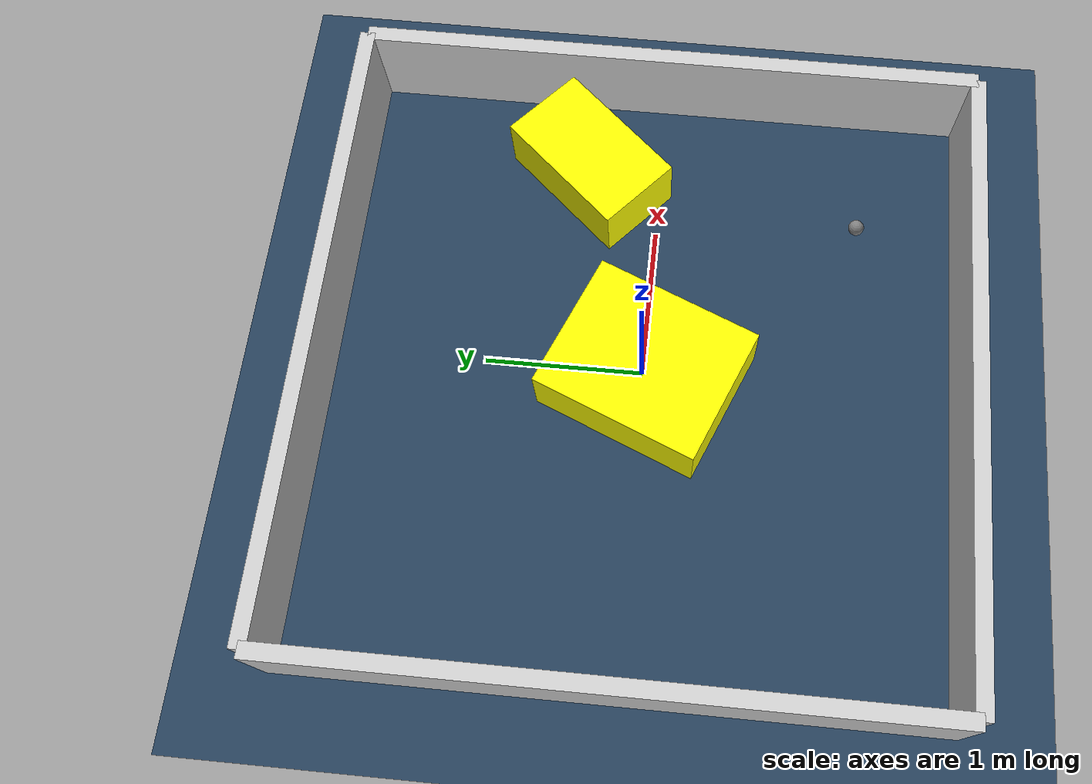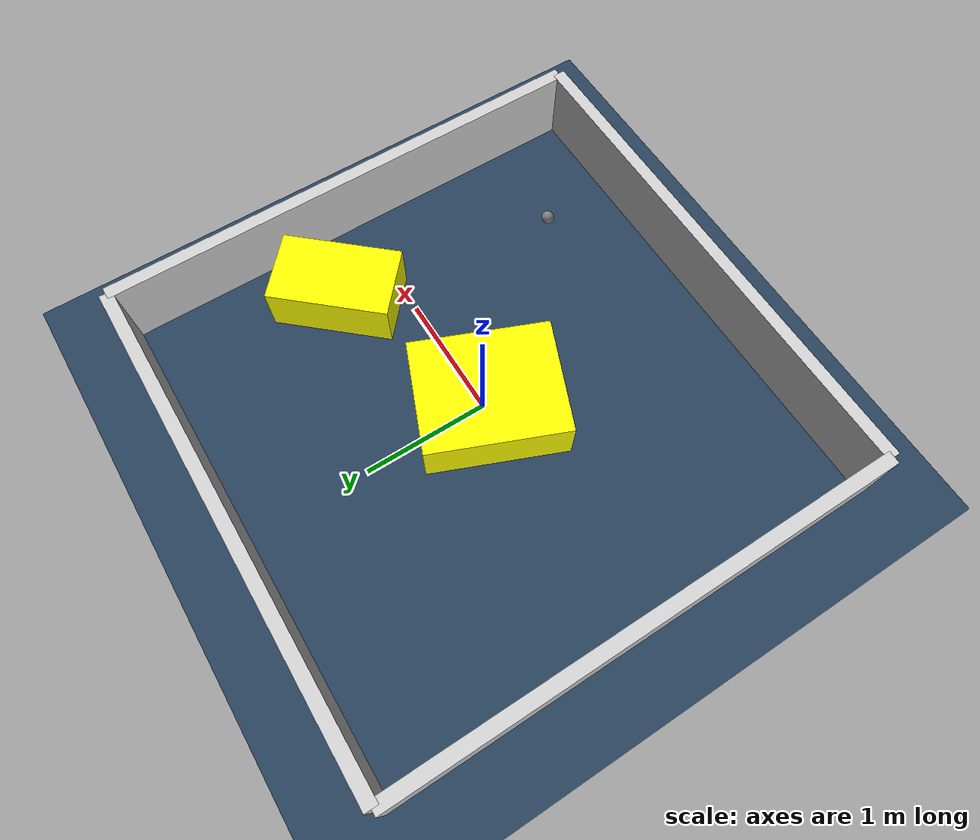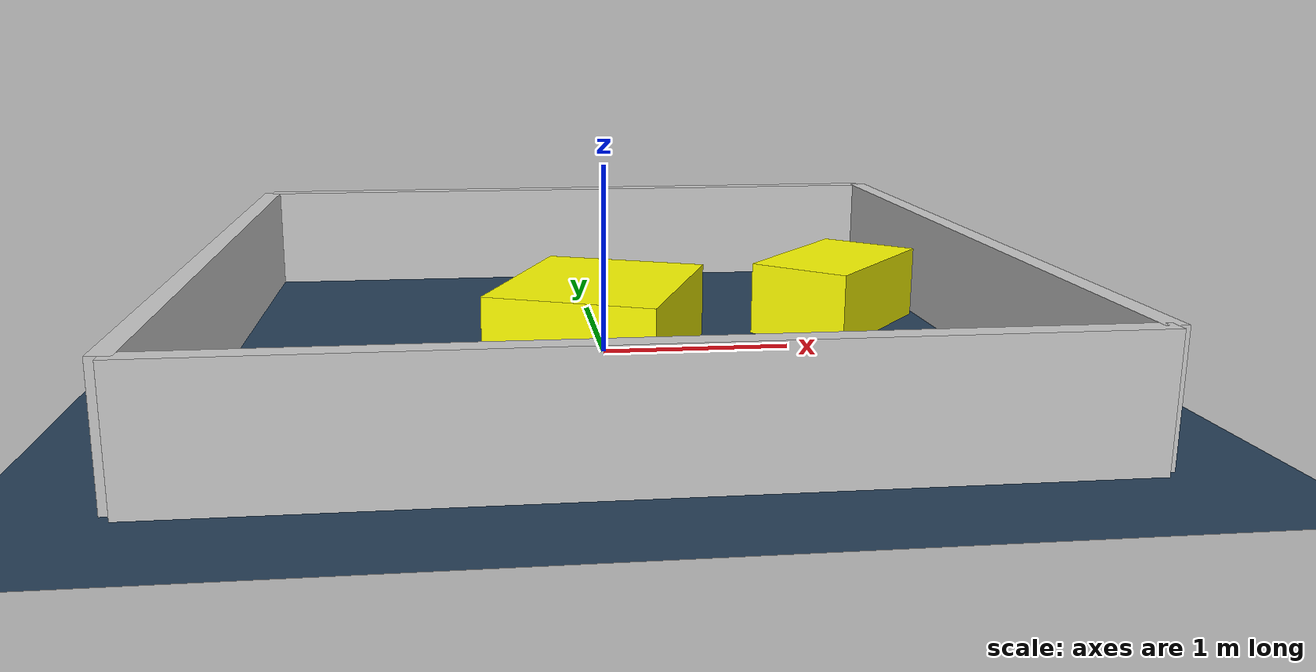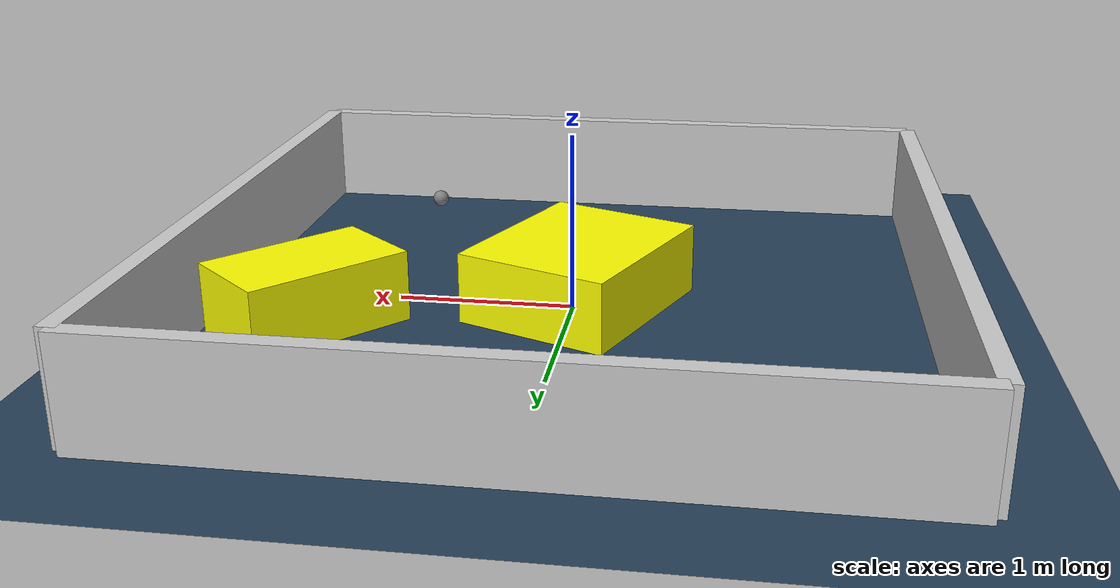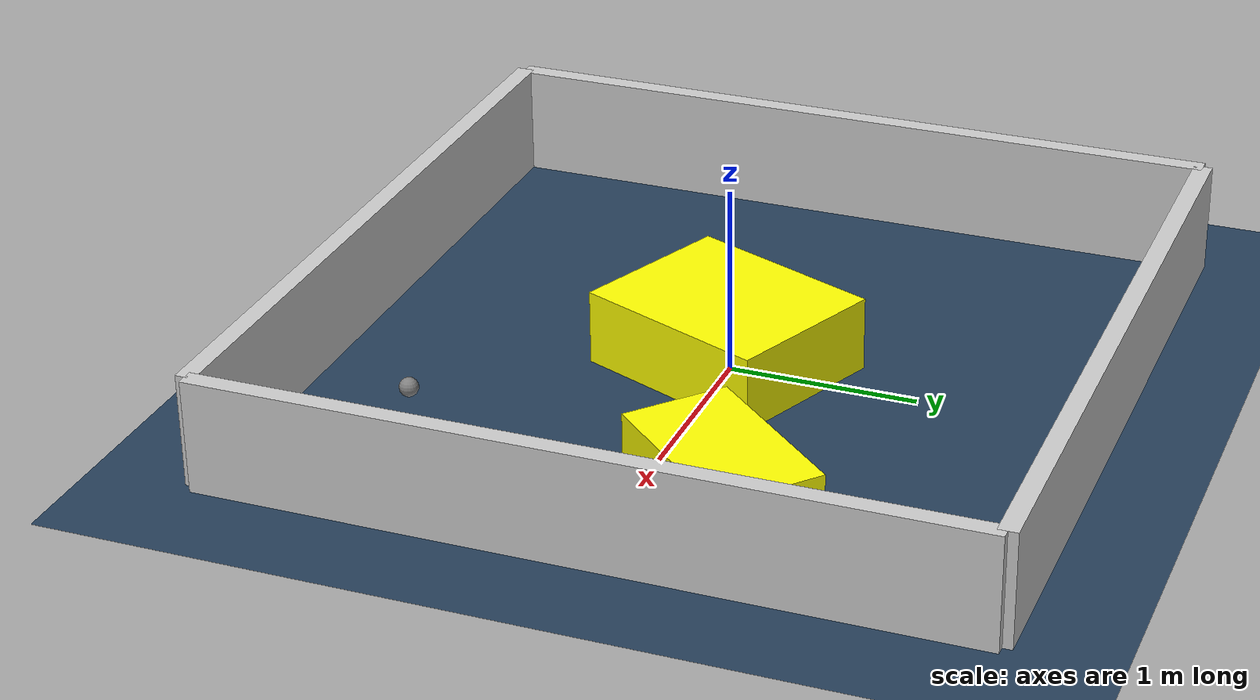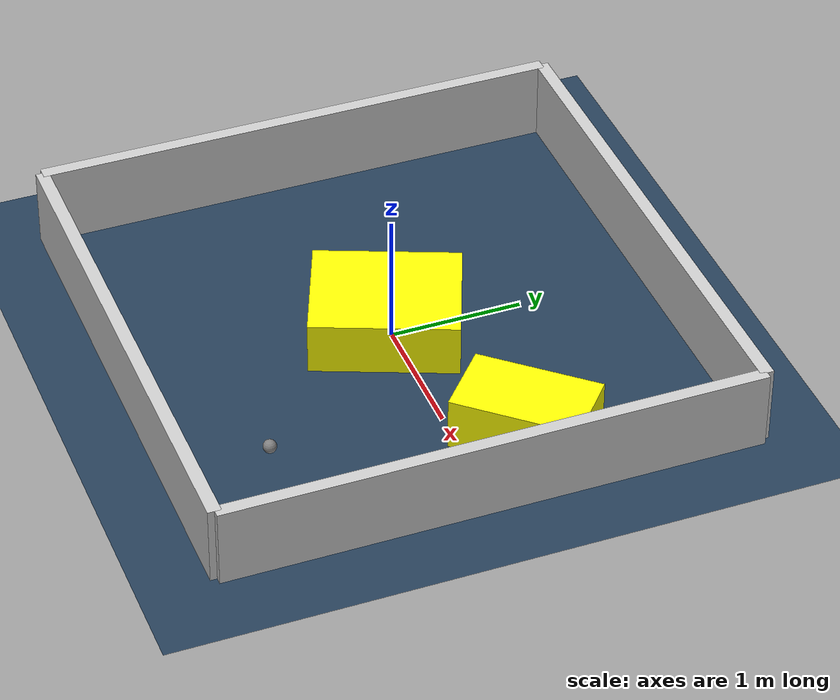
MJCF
<?xml version="1.0" ?>
<mujoco model="generated_environment">
  <option timestep="0.01" integrator="RK4" cone="elliptic"/>
  <default>
    <geom density="1"/>
  </default>
  <asset>
    <texture builtin="gradient" height="3072" rgb1="0.3 0.5 0.7" rgb2="0 0 0" type="skybox" width="512"/>
    <texture builtin="checker" height="300" mark="edge" markrgb="0.8 0.8 0.8" name="groundplane" rgb1="0.2 0.3 0.4" rgb2="0.1 0.2 0.3" type="2d" width="300"/>
    <material name="groundplane" reflectance="0.2" texrepeat="5 5" texture="groundplane" texuniform="true"/>
    <material name="robot" rgba="0.0 1.0 0.0 1"/>
  </asset>
  <worldbody>
    <light dir="0 0 -1" directional="true" pos="0 0 1.5"/>
    <geom condim="4" friction="1.0 0.005 0.001" material="groundplane" name="floor" size="0 0 0.05" type="plane"/>
    <body name="walls">
      <geom name="wall_1" condim="4" pos="-2.0 0.0 0.3" rgba="0.800000011920929 0.800000011920929 0.800000011920929 1.0" size="0.05 2.0 0.3" type="box"/>
      <geom name="wall_2" condim="4" pos="2.0 0.0 0.3" rgba="0.800000011920929 0.800000011920929 0.800000011920929 1.0" size="0.05 2.0 0.3" type="box"/>
      <geom name="wall_3" condim="4" pos="0.0 -2.0 0.3" rgba="0.800000011920929 0.800000011920929 0.800000011920929 1.0" size="2.0 0.05 0.3" type="box"/>
      <geom name="wall_4" condim="4" pos="0.0 2.0 0.3" rgba="0.800000011920929 0.800000011920929 0.800000011920929 1.0" size="2.0 0.05 0.3" type="box"/>
    </body>
    <body name="robot">
      <joint name="joint_x" type="slide" pos="0 0 0" axis="1 0 0"/>
      <joint name="joint_y" type="slide" pos="0 0 0" axis="0 1 0"/>
      <geom name="robot" type="sphere" pos="1.0717841933893797 -1.301036533841431 0.2" size="0.05" mass="5." friction="1.0 0.005 0.0001" condim="4"/>
      <site name="sensor_ball"/>
    </body>
    <body name="obstacle_1_movable">
      <geom name="obstacle_1_movable" condim="4" pos="-0.035030820641583915 -0.030200908217006717 0.2" euler="0 0 247.65313131941804" friction="1.0 0.005 0.001" rgba="1 1 0 1" size="0.5451430724493407 0.4478616431025737 0.2" type="box" mass="0.1"/>
      <joint type="free"/>
    </body>
    <body name="obstacle_2_movable">
      <geom name="obstacle_2_movable" condim="4" pos="1.393608754910996 0.468356731782402 0.2" euler="0 0 48.486409740373006" friction="1.0 0.005 0.001" rgba="1 1 0 1" size="0.4747547317896594 0.2826952210824552 0.2" type="box" mass="0.1"/>
      <joint type="free"/>
    </body>
  </worldbody>
  <actuator>
    <motor name="actuator_x" joint="joint_x" gear="1" ctrlrange="-1 1"/>
    <motor name="actuator_y" joint="joint_y" gear="1" ctrlrange="-1 1"/>
  </actuator>
</mujoco>
